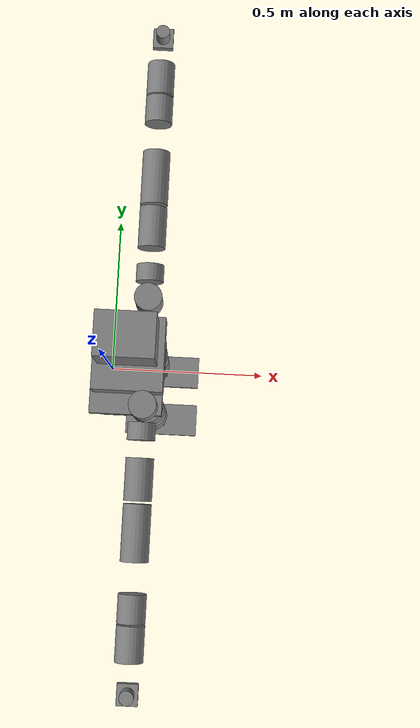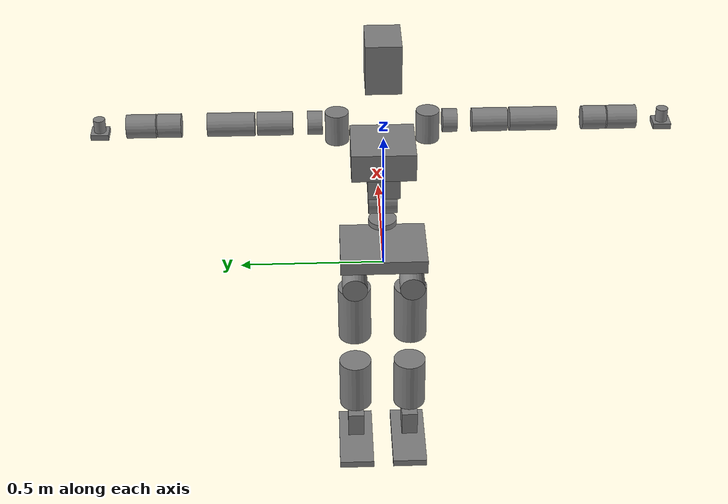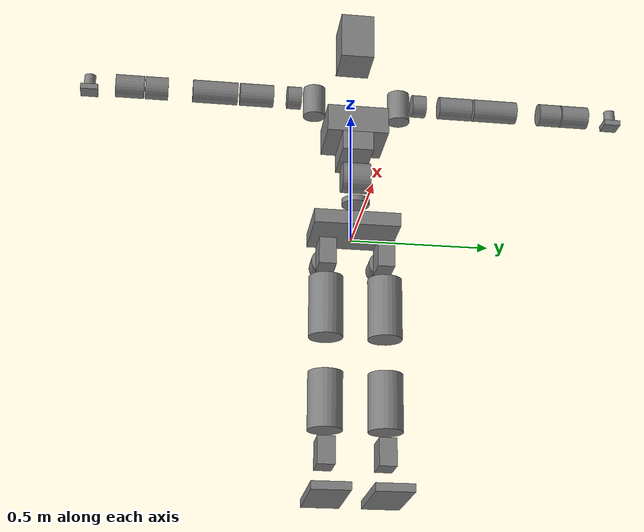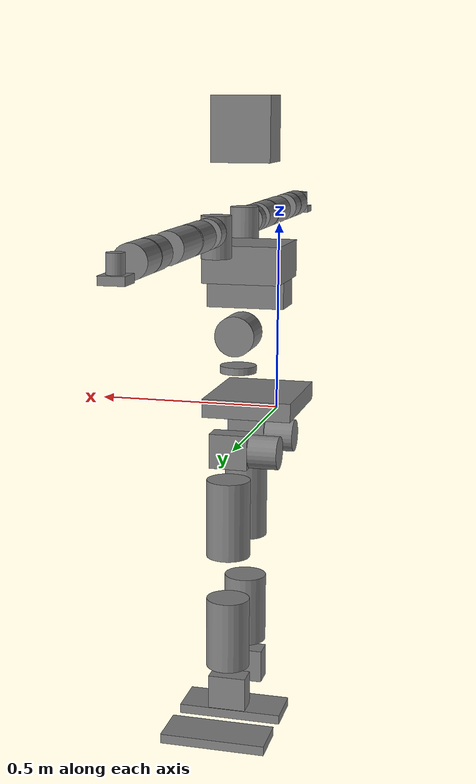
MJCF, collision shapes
<mujoco model="tocabi">
  <compiler angle="radian" meshdir="meshes"/>

  <asset>
    <mesh name="Pelvis_link"        file="Pelvis_link2.STL"     scale="0.001 0.001 0.001"/>
    <mesh name="HipRoll_L_Link"     file="HipRoll_L_Link.STL"/>
    <mesh name="HipCenter_L_Link"   file="HipCenter_L_Link.STL"/>
    <mesh name="Thigh_L_Link"       file="Thigh_L_Link.STL"/>
    <mesh name="Knee_L_Link"        file="Knee_L_Link.STL"/>
    <mesh name="AnkleCenter_L_Link" file="AnkleCenter_L_Link.STL"/>
    <mesh name="AnkleRoll_L_Link"   file="AnkleRoll_L_Link.STL"/>
    <mesh name="Foot_Link"          file="Foot_Link.STL"/>
    <mesh name="HipRoll_R_link"     file="HipRoll_R_link.STL"/>
    <mesh name="HipCenter_R_Link"   file="HipCenter_R_Link.STL"/>
    <mesh name="Thigh_R_Link"       file="Thigh_R_Link.STL"/>
    <mesh name="Knee_R_Link"        file="Knee_R_Link.STL"/>
    <mesh name="AnkleCenter_R_Link" file="AnkleCenter_R_Link.STL"/>
    <mesh name="AnkleRoll_R_Link"   file="AnkleRoll_R_Link.STL"/>
    <mesh name="waist1"             file="waistyaw.STL"         scale="0.001 0.001 0.001"/>
    <mesh name="waist2"             file="waist2.STL"/>
    <mesh name="upperbody"          file="upperbody.STL"/>
    <mesh name="L_shoulder1"        file="L_shoulder1.STL"/>
    <mesh name="L_shoulder2"        file="L_shoulder2.STL"/>
    <mesh name="L_shoulder3"        file="L_shoulder3.STL"/>
    <mesh name="L_arm"              file="L_arm.STL"/>
    <mesh name="L_elbow"            file="L_elbow.STL"/>
    <mesh name="L_forearm"          file="L_forearm.STL"/>
    <mesh name="L_wrist1"           file="L_wrist1.STL"/>
    <mesh name="L_wrist2"           file="L_wrist2.STL"/>
    <mesh name="neck"               file="neck.STL"/>
    <mesh name="head_mesh"          file="head.STL"             scale="0.001 0.001 0.001"/>
    <mesh name="R_shoulder1"        file="R_shoulder1.STL"/>
    <mesh name="R_shoulder2"        file="R_shoulder2.STL"/>
    <mesh name="R_shoulder3"        file="R_shoulder3.STL"/>
    <mesh name="R_arm"              file="R_arm.STL"/>
    <mesh name="R_elbow"            file="R_elbow.STL"/>
    <mesh name="R_forearm"          file="R_forearm.STL"/>
    <mesh name="R_wrist1"           file="R_wrist1.STL"/>
    <mesh name="R_wrist2"           file="R_wrist2.STL"/>
  </asset>

  <default>
    <motor ctrlrange="-1 1" ctrllimited="true"/>
    <default class="body">
      <geom condim="1" friction="1.0 0.05 0.05"
            solimp=".9 .99 .003" solref=".015 1"/>
      <joint limited="true" solimplimit="0 .99 .01"/>
    </default>
  </default>

  <!-- Joint order: L leg(6) R leg(6) Torso(3) L arm(8) Head(2) R arm(8) = 33 DOF -->
  <worldbody>
    <body name="base_link" pos="0 0 0" childclass="body">
      <freejoint name="root"/>
      <inertial pos="0.07809 0 0.03985" mass="12.19525"
                fullinertia="0.101833182 0.072400662 0.144478157 -0.000070812 -0.003831096 0.000079272"/>
      <geom type="mesh" mesh="Pelvis_link" rgba="0.20313 0.20313 0.20313 1" pos="0.11 0 0.02" quat="0.5 0.5 0.5 0.5" contype="0" conaffinity="0"/>
      <geom name="pelvis_col" type="box" pos="0.052 0 0.02" size="0.12 0.1525 0.025"/>

      <!-- ==================== LEFT LEG ================================ -->
      <body name="L_HipRoll_Link" pos="0.11 0.1025 -0.1025">
        <inertial pos="-0.06477 0 0.05149" mass="2.679"
                  fullinertia="0.01821 0.03121 0.2928 -1.676E-07 -0.0007745 -4.53E-09"/>
        <joint name="L_HipYaw_Joint" type="hinge" axis="0 0 1"
               range="-3.14 3.14" stiffness="222.2222" damping="5.0000" armature="0.6140"/>
        <geom type="mesh" mesh="HipRoll_L_Link" rgba="0.20313 0.20313 0.20313 1" contype="0" conaffinity="0"/>
        <geom type="cylinder" size="0.045 0.04" pos="-0.1 0 0" quat="0.707107 0 0.707107 0"/>

        <body name="L_HipCenter_Link" pos="0 0 0">
          <inertial pos="-0.04801 0.0022 2e-05" mass="2.67"
                    fullinertia="0.3553 0.009161 0.00876 1.725E-08 -3.236E-06 -4.778E-06"/>
          <joint name="L_HipRoll_Joint" type="hinge" axis="1 0 0"
                 range="-3.14 3.14" stiffness="555.5556" damping="16.6667" armature="0.8620"/>
          <geom type="mesh" mesh="HipCenter_L_Link" rgba="0.20313 0.20313 0.20313 1" contype="0" conaffinity="0"/>
          <geom type="box" size="0.05225 0.03 0.0475" pos="-0.0045 0 0"/>

          <body name="L_Thigh_Link" pos="0 0 0">
            <inertial pos="-0.00042 0.00032 -0.18904" mass="5.366"
                      fullinertia="0.2987 0.7088 0.00982 -4.284E-05 -0.000196 0.002406"/>
            <joint name="L_HipPitch_Joint" type="hinge" axis="0 1 0"
                   range="-3.14 3.14" stiffness="444.4444" damping="6.6667" armature="1.0900"/>
            <geom type="mesh" mesh="Thigh_L_Link" rgba="0.85938 0.07813 0.23438 1" contype="0" conaffinity="0"/>
            <geom type="cylinder" size="0.06 0.10875" pos="0 0 -0.1923"/>

            <body name="L_Knee_Link" pos="0 0 -0.35">
              <inertial pos="0.00429 -0.00214 -0.1428" mass="3.883"
                        fullinertia="0.1506 0.5588 0.007451 -2.887E-05 -0.002607 -0.001486"/>
              <joint name="L_Knee_Joint" type="hinge" axis="0 1 0"
                     range="-3.14 3.14" stiffness="411.1111" damping="8.3333" armature="1.0900"/>
              <geom type="mesh" mesh="Knee_L_Link" rgba="0.85938 0.07813 0.23438 1" contype="0" conaffinity="0"/>
              <geom type="cylinder" size="0.06 0.1" pos="0 0 -0.175"/>

              <body name="L_AnkleCenter_Link" pos="0 0 -0.35">
                <inertial pos="-0.00419 0.0018 -0.0003" mass="2.51"
                          fullinertia="0.002857 0.4135 0.003345 -1.422E-07 2.222E-06 4.611E-06"/>
                <joint name="L_AnklePitch_Joint" type="hinge" axis="0 1 0"
                       range="-3.14 3.14" stiffness="355.5556" damping="8.0000" armature="1.0900"/>
                <geom type="mesh" mesh="AnkleCenter_L_Link" rgba="0.20313 0.20313 0.20313 1" contype="0" conaffinity="0"/>
                <geom type="box" size="0.05225 0.03 0.0475" pos="-0.0045 0 0"/>

                <body name="L_AnkleRoll_Link" pos="0 0 0">
                  <inertial pos="-0.05196 0.00005 -0.0219" mass="1.26426"
                            fullinertia="0.418697 0.006211405 0.008575514 1.5176E-08 -0.001095976 -5.435E-08"/>
                  <joint name="L_AnkleRoll_Joint" type="hinge" axis="1 0 0"
                         range="-3.14 3.14" stiffness="355.5556" damping="8.0000" armature="0.3600"/>
                  <geom type="mesh" mesh="AnkleRoll_L_Link" rgba="0.85938 0.07813 0.23438 1" contype="0" conaffinity="0"/>
                  <body name="left_foot" pos="0 0 0">
                    <inertial pos="0.0162 8e-05 -0.1209" mass="2.326"
                              fullinertia="0.003386409 0.012600125 0.014296 1.1237E-05 -0.000526477 -1.976E-06"/>
                    <geom type="mesh" mesh="Foot_Link" rgba="0.85938 0.07813 0.23438 1" contype="0" conaffinity="0"/>
                    <geom name="left_foot" type="box" pos="0.03 0 -0.145" size="0.15 0.065 0.0135"/>
                  </body>
                </body>
              </body>
            </body>
          </body>
        </body>
      </body>

      <!-- ==================== RIGHT LEG =============================== -->
      <body name="R_HipRoll_Link" pos="0.11 -0.1025 -0.1025">
        <inertial pos="-0.06477 0 0.05149" mass="2.679"
                  fullinertia="0.01821 0.03121 0.2928 -1.676E-07 -0.0007745 -4.53E-09"/>
        <joint name="R_HipYaw_Joint" type="hinge" axis="0 0 1"
               range="-3.14 3.14" stiffness="222.2222" damping="5.0000" armature="0.6140"/>
        <geom type="mesh" mesh="HipRoll_R_link" rgba="0.20313 0.20313 0.20313 1" contype="0" conaffinity="0"/>
        <geom type="cylinder" size="0.045 0.04" pos="-0.1 0 0" quat="0.707107 0 0.707107 0"/>

        <body name="R_HipCenter_Link" pos="0 0 0">
          <inertial pos="-0.04801 -0.0022 2e-05" mass="2.67"
                    fullinertia="0.3553 0.009161 0.00876 1.725E-08 -3.236E-06 -4.778E-06"/>
          <joint name="R_HipRoll_Joint" type="hinge" axis="1 0 0"
                 range="-3.14 3.14" stiffness="555.5556" damping="16.6667" armature="0.8620"/>
          <geom type="mesh" mesh="HipCenter_R_Link" rgba="0.20313 0.20313 0.20313 1" contype="0" conaffinity="0"/>
          <geom type="box" size="0.05225 0.03 0.0475" pos="-0.0045 0 0"/>

          <body name="R_Thigh_Link" pos="0 0 0">
            <inertial pos="-0.00042 -0.00032 -0.18904" mass="5.366"
                      fullinertia="0.2987 0.7088 0.00982 -4.284E-05 -0.000196 0.002406"/>
            <joint name="R_HipPitch_Joint" type="hinge" axis="0 1 0"
                   range="-3.14 3.14" stiffness="444.4444" damping="6.6667" armature="1.0900"/>
            <geom type="mesh" mesh="Thigh_R_Link" rgba="0.85938 0.07813 0.23438 1" contype="0" conaffinity="0"/>
            <geom type="cylinder" size="0.06 0.10875" pos="0 0 -0.1923"/>

            <body name="R_Knee_Link" pos="0 0 -0.35">
              <inertial pos="0.00429 0.00214 -0.1428" mass="3.883"
                        fullinertia="0.1506 0.5588 0.007451 -2.887E-05 -0.002607 -0.001486"/>
              <joint name="R_Knee_Joint" type="hinge" axis="0 1 0"
                     range="-3.14 3.14" stiffness="411.1111" damping="8.3333" armature="1.0900"/>
              <geom type="mesh" mesh="Knee_R_Link" rgba="0.85938 0.07813 0.23438 1" contype="0" conaffinity="0"/>
              <geom type="cylinder" size="0.06 0.1" pos="0 0 -0.175"/>

              <body name="R_AnkleCenter_Link" pos="0 0 -0.35">
                <inertial pos="-0.00419 -0.0018 -0.0003" mass="2.51"
                          fullinertia="0.002857 0.4135 0.003345 -1.422E-07 2.222E-06 4.611E-06"/>
                <joint name="R_AnklePitch_Joint" type="hinge" axis="0 1 0"
                       range="-3.14 3.14" stiffness="355.5556" damping="8.0000" armature="1.0900"/>
                <geom type="mesh" mesh="AnkleCenter_R_Link" rgba="0.20313 0.20313 0.20313 1" contype="0" conaffinity="0"/>
                <geom type="box" size="0.05225 0.03 0.0475" pos="-0.0045 0 0"/>

                <body name="R_AnkleRoll_Link" pos="0 0 0">
                  <inertial pos="-0.05196 0.00005 -0.0219" mass="1.26426"
                            fullinertia="0.418697 0.006211405 0.008575514 1.5176E-08 -0.001095976 -5.435E-08"/>
                  <joint name="R_AnkleRoll_Joint" type="hinge" axis="1 0 0"
                         range="-3.14 3.14" stiffness="355.5556" damping="8.0000" armature="0.3600"/>
                  <geom type="mesh" mesh="AnkleRoll_R_Link" rgba="0.85938 0.07813 0.23438 1" contype="0" conaffinity="0"/>
                  <body name="right_foot" pos="0 0 0">
                    <inertial pos="0.0162 8e-05 -0.1209" mass="2.326"
                              fullinertia="0.003386409 0.012600125 0.014296 1.1237E-05 -0.000526477 -1.976E-06"/>
                    <geom type="mesh" mesh="Foot_Link" rgba="0.85938 0.07813 0.23438 1" contype="0" conaffinity="0"/>
                    <geom name="right_foot" type="box" pos="0.03 0 -0.145" size="0.15 0.065 0.0135"/>
                  </body>
                </body>
              </body>
            </body>
          </body>
        </body>
      </body>

      <!-- ==================== TORSO =================================== -->
      <body name="Waist1_Link" pos="0.11 0 0.1979">
        <inertial pos="0 0 -0.03647" mass="0.89722"
                  fullinertia="0.003744227 0.002030963 1.007723743 -0.000023489 0.000037149 -0.000424890"/>
        <joint name="Waist1_Joint" type="hinge" axis="0 0 1"
               range="-2.094 2.094" stiffness="666.6667" damping="66.6667" armature="0.0780"/>
        <geom type="mesh" mesh="waist1" rgba="0.85938 0.07813 0.23438 1" pos="0 0 -0.085" quat="0 0.707107 0 0.707107" contype="0" conaffinity="0"/>
        <geom type="cylinder" size="0.05 0.01" pos="0 0 -0.096"/>

        <body name="Waist2_Link" pos="0 0 0">
          <inertial pos="-0.00029 0 0" mass="3.752"
                    fullinertia="0.006020606 1.011708561 0.007561688 0.000011504 -0.000000053 0.000001147"/>
          <joint name="Waist2_Joint" type="hinge" axis="0 1 0"
                 range="-2.094 2.094" stiffness="1111.1111" damping="33.3333" armature="0.0780"/>
          <geom type="mesh" mesh="waist2" rgba="0.20313 0.20313 0.20313 1" contype="0" conaffinity="0"/>
          <geom type="cylinder" size="0.055 0.05" quat="0.707107 0.707107 0 0"/>

          <body name="Upperbody_Link" pos="0 0 0">
            <inertial pos="-0.07294 0 0.16798" quat="0.999909 -0.000268355 -0.0135223 5.11667e-05"
                      mass="18.1338" diaginertia="0.563198 0.563198 0.563198"/>
            <joint name="Upperbody_Joint" type="hinge" axis="-1 0 0"
                   range="-2.094 2.094" stiffness="1111.1111" damping="33.3333" armature="0.0780"/>
            <geom type="mesh" mesh="upperbody" rgba="0.85938 0.07813 0.23438 1" contype="0" conaffinity="0"/>
            <geom type="box" pos="-0.03 0 0.200" size="0.105 0.110 0.050"/>
            <geom type="box" pos="-0.03 0 0.115" size="0.105 0.055 0.035"/>

            <!-- =============== LEFT ARM ============================== -->
            <body name="L_Shoulder1_Link" pos="0.023 0.154 0.2275">
              <inertial pos="-3e-05 0.00397 0.06029" mass="1.6762"
                        fullinertia="0.001925606 0.001936576 0.185330098 0.000001433 0.000002313 0.000078962"/>
              <joint name="L_Shoulder1_Joint" type="hinge" axis="0 0 1"
                     range="-2.09 1.54" stiffness="44.4444" damping="3.3333" armature="0.1800"/>
              <geom type="mesh" mesh="L_shoulder1" rgba="0.85938 0.07813 0.23438 1" contype="0" conaffinity="0"/>
              <geom type="cylinder" size="0.04 0.055" pos="0 0 0.05"/>

              <body name="L_Shoulder2_Link" pos="0 0.0341 0.065">
                <inertial pos="0.00107 0.0491 -1e-05" mass="0.4016"
                          fullinertia="0.000989903 0.184275853 0.001067575 0.000028237 -0.000000465 0.000000133"/>
                <joint name="L_Shoulder2_Joint" type="hinge" axis="0 1 0"
                       range="-3.14159 3.14159" stiffness="111.1111" damping="9.3333" armature="0.1800"/>
                <geom type="mesh" mesh="L_shoulder2" rgba="0.20313 0.20313 0.20313 1" contype="0" conaffinity="0"/>
                <geom type="cylinder" size="0.04 0.025" pos="0 0.04 0" quat="0.707107 0.707107 0 0"/>

                <body name="L_Shoulder3_Link" pos="0 0.115 0">
                  <inertial pos="0.00262 0.04826 0.00023" mass="2.90141"
                            fullinertia="0.192093159 0.002493784 0.008296854 -0.000365084 -0.000002746 -0.000023821"/>
                  <joint name="L_Shoulder3_Joint" type="hinge" axis="-1 0 0"
                         range="-1.9199 1.9199" stiffness="44.4444" damping="3.3333" armature="0.1800"/>
                  <geom type="mesh" mesh="L_shoulder3" rgba="0.20313 0.20313 0.20313 1" contype="0" conaffinity="0"/>
                  <geom type="cylinder" size="0.04 0.06" pos="0 0.06 0" quat="0.707107 0.707107 0 0"/>

                  <body name="L_Armlink_Link" pos="0 0.1281 0">
                    <inertial pos="-0.01896 0.11642 -0.0119" mass="0.58517"
                              fullinertia="0.002878609 0.184381923 0.003117058 0.000302586 -0.000036001 0.000398377"/>
                    <joint name="L_Armlink_Joint" type="hinge" axis="0 1 0"
                           range="-3.14159 3.14159" stiffness="44.4444" damping="3.3333" armature="0.1800"/>
                    <geom type="mesh" mesh="L_arm" rgba="0.85938 0.07813 0.23438 1" contype="0" conaffinity="0"/>
                    <geom type="cylinder" size="0.04 0.08" pos="0 0.08 0" quat="0.707107 0.707107 0 0"/>

                    <body name="L_Elbow_Link" pos="0 0.207 -0.0325">
                      <inertial pos="-0.00136 0.05256 0.01764" mass="2.06511"
                                fullinertia="0.055865466 0.001895543 0.005958821 0.000151764 0.000055158 0.001530917"/>
                      <joint name="L_Elbow_Joint" type="hinge" axis="1 0 0"
                             range="-3.14159 2.8" stiffness="44.4444" damping="3.3333" armature="0.0032"/>
                      <geom type="mesh" mesh="L_elbow" rgba="0.20313 0.20313 0.20313 1" contype="0" conaffinity="0"/>
                      <geom type="cylinder" size="0.04 0.04" pos="0 0.08 0.0325" quat="0.707107 0.707107 0 0"/>

                      <body name="L_Forearm_Link" pos="0 0.1244 0.0325">
                        <inertial pos="-0.01426 0.0767 0.00033" mass="0.35234"
                                  fullinertia="0.001053636 0.049889479 0.001266418 0.000084568 0.000022117 0.000019539"/>
                        <joint name="L_Forearm_Joint" type="hinge" axis="0 1 0"
                               range="-3.14159 3.14159" stiffness="44.4444" damping="3.3333" armature="0.0032"/>
                        <geom type="mesh" mesh="L_forearm" rgba="0.85938 0.07813 0.23438 1" contype="0" conaffinity="0"/>
                        <geom type="cylinder" size="0.04 0.05" pos="0 0.05 0" quat="0.707107 0.707107 0 0"/>

                        <body name="L_Wrist1_Link" pos="0 0.1451 0">
                          <inertial pos="-0.00158 0.02153 3e-05" mass="0.70923"
                                    fullinertia="0.015205197 0.000396376 0.000683187 0.000024218 -0.000000263 0.000000688"/>
                          <joint name="L_Wrist1_Joint" type="hinge" axis="1 0 0"
                                 range="-3.14159 3.14159" stiffness="11.1111" damping="1.0000" armature="0.0032"/>
                          <geom type="mesh" mesh="L_wrist1" rgba="0.20313 0.20313 0.20313 1" contype="0" conaffinity="0"/>
                          <geom type="cylinder" size="0.02 0.03" pos="0 0.046 0"/>

                          <body name="left_hand" pos="0 0.046 0">
                            <inertial pos="0.00063 0.0636 0.00178" mass="0.1"
                                      fullinertia="0.000865450 0.000696917 0.015377823 0 0 0"/>
                            <joint name="L_Wrist2_Joint" type="hinge" axis="0 1 0"
                                   range="-2.094 2.094" stiffness="11.1111" damping="1.0000" armature="0.0032"/>
                            <geom type="mesh" mesh="L_wrist2" rgba="0.20313 0.20313 0.20313 1" contype="0" conaffinity="0"/>
                            <geom name="left_hand" type="box" pos="0 0 -0.025" size="0.03 0.03 0.01"/>
                          </body>
                        </body>
                      </body>
                    </body>
                  </body>
                </body>
              </body>
            </body>

            <!-- =============== HEAD ================================== -->
            <body name="Neck_Link" pos="-0.036 0 0.3795">
              <inertial pos="0 0 -0.0023" mass="0.248"
                        fullinertia="0.000058259 0.000036489 0.000058237 -0.000000076 0.000000268 -0.000001002"/>
              <joint name="Neck_Joint" type="hinge" axis="0 0 1"
                     range="-1.54 1.54" stiffness="11.1111" damping="0.6667" armature="0.0032"/>
              <geom type="mesh" mesh="neck" rgba="0.20313 0.20313 0.20313 1" contype="0" conaffinity="0"/>

              <body name="head" pos="0 0 0.0275">
                <inertial pos="0.037 0 0.071" mass="1.417"
                          fullinertia="0.0079 0.012 0.01 0.0 0.0025 0.0"/>
                <joint name="Head_Joint" type="hinge" axis="0 1 0"
                       range="-1.54 1.54" stiffness="11.1111" damping="0.6667" armature="0.0032"/>
                <geom type="mesh" mesh="head_mesh" rgba="0.85938 0.07813 0.23438 1" pos="0.02 0 -0.6" contype="0" conaffinity="0"/>
                <geom name="head" type="box" pos="0.02 0 0.14" size="0.08 0.06 0.086"/>
              </body>
            </body>

            <!-- =============== RIGHT ARM ============================= -->
            <body name="R_Shoulder1_Link" pos="0.023 -0.154 0.2275">
              <inertial pos="-3e-05 -0.00397 0.06029" mass="1.6762"
                        fullinertia="0.001925606 0.001936576 0.185330098 -0.000001433 0.000002313 -0.000078962"/>
              <joint name="R_Shoulder1_Joint" type="hinge" axis="0 0 1"
                     range="-1.54 2.09" stiffness="44.4444" damping="3.3333" armature="0.1800"/>
              <geom type="mesh" mesh="R_shoulder1" rgba="0.85938 0.07813 0.23438 1" contype="0" conaffinity="0"/>
              <geom type="cylinder" size="0.04 0.055" pos="0 0 0.05"/>

              <body name="R_Shoulder2_Link" pos="0 -0.0341 0.065">
                <inertial pos="0.00107 -0.0491 -1e-05" mass="0.4016"
                          fullinertia="0.000989903 0.184275853 0.001067575 -0.000028237 -0.000000465 -0.000000133"/>
                <joint name="R_Shoulder2_Joint" type="hinge" axis="0 -1 0"
                       range="-3.14159 3.14159" stiffness="111.1111" damping="9.3333" armature="0.1800"/>
                <geom type="mesh" mesh="R_shoulder2" rgba="0.20313 0.20313 0.20313 1" contype="0" conaffinity="0"/>
                <geom type="cylinder" size="0.04 0.025" pos="0 -0.04 0" quat="0.707107 0.707107 0 0"/>

                <body name="R_Shoulder3_Link" pos="0 -0.115 0">
                  <inertial pos="0.00262 -0.04826 0.00023" mass="2.90141"
                            fullinertia="0.192093159 0.002493784 0.008296854 0.000365084 -0.000002746 0.000023821"/>
                  <joint name="R_Shoulder3_Joint" type="hinge" axis="-1 0 0"
                         range="-1.9199 1.9199" stiffness="44.4444" damping="3.3333" armature="0.1800"/>
                  <geom type="mesh" mesh="R_shoulder3" rgba="0.20313 0.20313 0.20313 1" contype="0" conaffinity="0"/>
                  <geom type="cylinder" size="0.04 0.06" pos="0 -0.06 0" quat="0.707107 0.707107 0 0"/>

                  <body name="R_Armlink_Link" pos="0 -0.1281 0">
                    <inertial pos="-0.01896 -0.11642 -0.0119" mass="0.58517"
                              fullinertia="0.002878609 0.184381923 0.003117058 -0.000302586 -0.000036001 -0.000398377"/>
                    <joint name="R_Armlink_Joint" type="hinge" axis="0 -1 0"
                           range="-3.14159 3.14159" stiffness="44.4444" damping="3.3333" armature="0.1800"/>
                    <geom type="mesh" mesh="R_arm" rgba="0.85938 0.07813 0.23438 1" contype="0" conaffinity="0"/>
                    <geom type="cylinder" size="0.04 0.08" pos="0 -0.08 0" quat="0.707107 0.707107 0 0"/>

                    <body name="R_Elbow_Link" pos="0 -0.207 -0.0325">
                      <inertial pos="-0.00136 -0.05256 0.01764" mass="2.06511"
                                fullinertia="0.055865466 0.001895543 0.005958821 -0.000151764 0.000055158 -0.001530917"/>
                      <joint name="R_Elbow_Joint" type="hinge" axis="1 0 0"
                             range="-2.967 3.14159" stiffness="44.4444" damping="3.3333" armature="0.0032"/>
                      <geom type="mesh" mesh="R_elbow" rgba="0.20313 0.20313 0.20313 1" contype="0" conaffinity="0"/>
                      <geom type="cylinder" size="0.04 0.04" pos="0 -0.08 0.0325" quat="0.707107 0.707107 0 0"/>

                      <body name="R_Forearm_Link" pos="0 -0.1244 0.0325">
                        <inertial pos="-0.01426 -0.0767 0.00033" mass="0.35234"
                                  fullinertia="0.001053636 0.049889479 0.001266418 -0.000084568 0.000022117 -0.000019539"/>
                        <joint name="R_Forearm_Joint" type="hinge" axis="0 -1 0"
                               range="-3.14159 3.14159" stiffness="44.4444" damping="3.3333" armature="0.0032"/>
                        <geom type="mesh" mesh="R_forearm" rgba="0.85938 0.07813 0.23438 1" contype="0" conaffinity="0"/>
                        <geom type="cylinder" size="0.04 0.05" pos="0 -0.05 0" quat="0.707107 0.707107 0 0"/>

                        <body name="R_Wrist1_Link" pos="0 -0.1451 0">
                          <inertial pos="-0.00158 -0.02153 3e-05" mass="0.70923"
                                    fullinertia="0.015205197 0.000396376 0.000683187 -0.000024218 -0.000000263 -0.000000688"/>
                          <joint name="R_Wrist1_Joint" type="hinge" axis="1 0 0"
                                 range="-3.14159 3.14159" stiffness="11.1111" damping="1.0000" armature="0.0032"/>
                          <geom type="mesh" mesh="R_wrist1" rgba="0.20313 0.20313 0.20313 1" contype="0" conaffinity="0"/>
                          <geom type="cylinder" size="0.02 0.03" pos="0 -0.046 0"/>

                          <body name="right_hand" pos="0 -0.046 0">
                            <inertial pos="0.00063 -0.0636 0.00178" mass="0.1"
                                      fullinertia="0.000865450 0.000696917 0.015377823 0 0 0"/>
                            <joint name="R_Wrist2_Joint" type="hinge" axis="0 -1 0"
                                   range="-2.094 2.094" stiffness="11.1111" damping="1.0000" armature="0.0032"/>
                            <geom type="mesh" mesh="R_wrist2" rgba="0.20313 0.20313 0.20313 1" contype="0" conaffinity="0"/>
                            <geom name="right_hand" type="box" pos="0 0 -0.025" size="0.03 0.03 0.01"/>
                          </body>
                        </body>
                      </body>
                    </body>
                  </body>
                </body>
              </body>
            </body>

          </body><!-- Upperbody_Link -->
        </body><!-- Waist2_Link -->
      </body><!-- Waist1_Link -->

    </body><!-- base_link -->
  </worldbody>

  <actuator>
    <motor name="L_HipYaw_Motor"     gear="100" joint="L_HipYaw_Joint"/>
    <motor name="L_HipRoll_Motor"    gear="100" joint="L_HipRoll_Joint"/>
    <motor name="L_HipPitch_Motor"   gear="100" joint="L_HipPitch_Joint"/>
    <motor name="L_Knee_Motor"       gear="100" joint="L_Knee_Joint"/>
    <motor name="L_AnklePitch_Motor" gear="100" joint="L_AnklePitch_Joint"/>
    <motor name="L_AnkleRoll_Motor"  gear="100" joint="L_AnkleRoll_Joint"/>
    <motor name="R_HipYaw_Motor"     gear="100" joint="R_HipYaw_Joint"/>
    <motor name="R_HipRoll_Motor"    gear="100" joint="R_HipRoll_Joint"/>
    <motor name="R_HipPitch_Motor"   gear="100" joint="R_HipPitch_Joint"/>
    <motor name="R_Knee_Motor"       gear="100" joint="R_Knee_Joint"/>
    <motor name="R_AnklePitch_Motor" gear="100" joint="R_AnklePitch_Joint"/>
    <motor name="R_AnkleRoll_Motor"  gear="100" joint="R_AnkleRoll_Joint"/>
    <motor name="Waist1_Motor"       gear="100" joint="Waist1_Joint"/>
    <motor name="Waist2_Motor"       gear="100" joint="Waist2_Joint"/>
    <motor name="Upperbody_Motor"    gear="100" joint="Upperbody_Joint"/>
    <motor name="L_Shoulder1_Motor"  gear="100" joint="L_Shoulder1_Joint"/>
    <motor name="L_Shoulder2_Motor"  gear="100" joint="L_Shoulder2_Joint"/>
    <motor name="L_Shoulder3_Motor"  gear="100" joint="L_Shoulder3_Joint"/>
    <motor name="L_Armlink_Motor"    gear="100" joint="L_Armlink_Joint"/>
    <motor name="L_Elbow_Motor"      gear="100" joint="L_Elbow_Joint"/>
    <motor name="L_Forearm_Motor"    gear="100" joint="L_Forearm_Joint"/>
    <motor name="L_Wrist1_Motor"     gear="100" joint="L_Wrist1_Joint"/>
    <motor name="L_Wrist2_Motor"     gear="100" joint="L_Wrist2_Joint"/>
    <motor name="Neck_Motor"         gear="100" joint="Neck_Joint"/>
    <motor name="Head_Motor"         gear="100" joint="Head_Joint"/>
    <motor name="R_Shoulder1_Motor"  gear="100" joint="R_Shoulder1_Joint"/>
    <motor name="R_Shoulder2_Motor"  gear="100" joint="R_Shoulder2_Joint"/>
    <motor name="R_Shoulder3_Motor"  gear="100" joint="R_Shoulder3_Joint"/>
    <motor name="R_Armlink_Motor"    gear="100" joint="R_Armlink_Joint"/>
    <motor name="R_Elbow_Motor"      gear="100" joint="R_Elbow_Joint"/>
    <motor name="R_Forearm_Motor"    gear="100" joint="R_Forearm_Joint"/>
    <motor name="R_Wrist1_Motor"     gear="100" joint="R_Wrist1_Joint"/>
    <motor name="R_Wrist2_Motor"     gear="100" joint="R_Wrist2_Joint"/>
  </actuator>

  <keyframe>
    <key name="stand"
         qpos="0 0 0.77003  1 0 0 0
               0.0   0.0  -0.24   0.6  -0.36   0.0
               0.0   0.0  -0.24   0.6  -0.36   0.0
               0.0   0.0   0.0
               0.3   0.3   1.5  -1.27  -1.0    0.0  -1.0   0.0
               0.0   0.0
              -0.3  -0.3  -1.5   1.27   1.0    0.0   1.0   0.0"/>
  </keyframe>

</mujoco>
